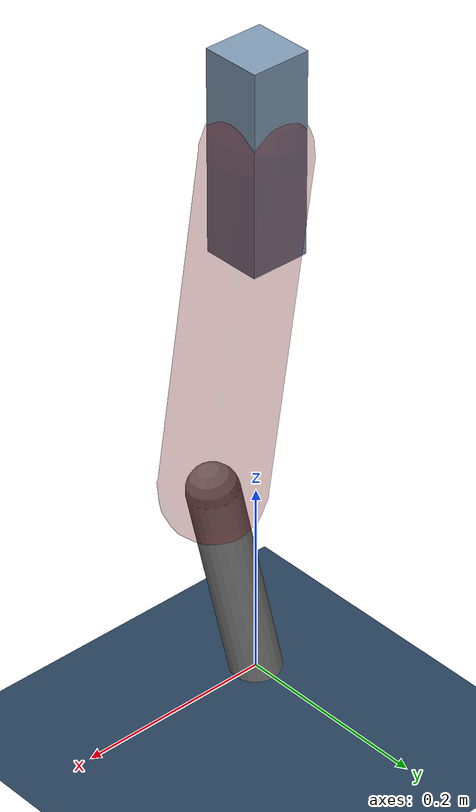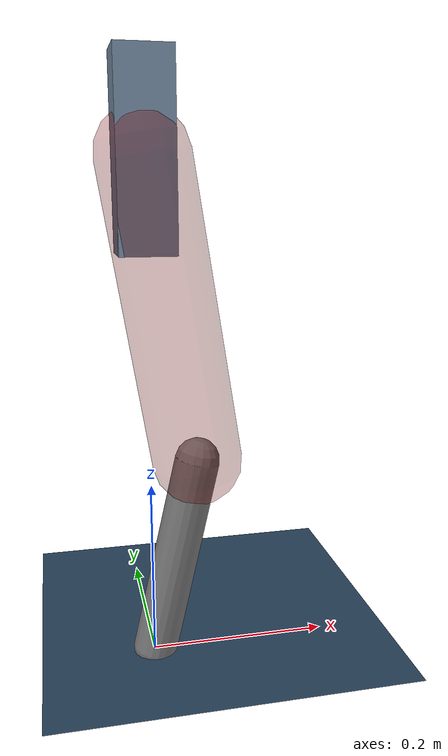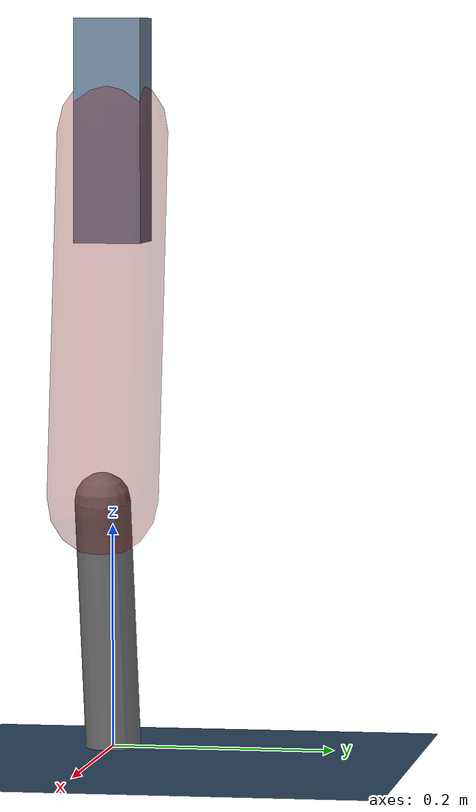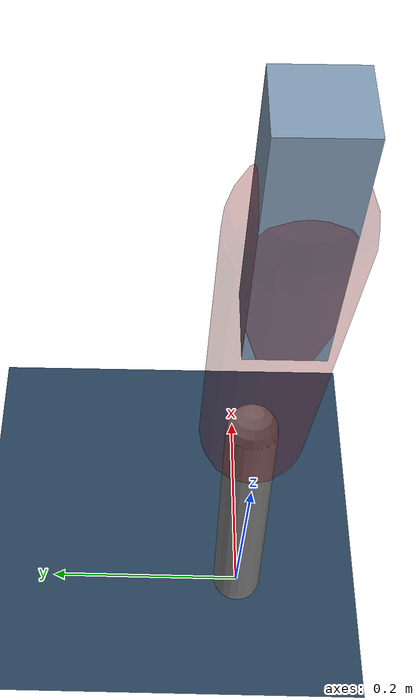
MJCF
<mujoco model="Hopper2D">
	<compiler inertiafromgeom="true" angle="radian" />
	<option timestep="0.001" integrator="implicit" cone="elliptic" solver="Newton" tolerance="1e-10" />

	<default>
		<geom contype="1" conaffinity="1" condim="3" friction="2 0.005 0.0001" solref="0.005 1" />
		<joint limited="true" damping="0.1" />
	</default>

	<asset>
		<texture name="skybox" type="skybox" builtin="gradient" rgb1=".4 .6 .8" rgb2="0 0 0" width="800" height="800" />
		<texture name="grid" type="2d" builtin="checker" rgb1=".1 .2 .3" rgb2=".2 .3 .4" width="300" height="300" mark="edge" markrgb=".2 .3 .4" />
		<material name="ground" texture="grid" texrepeat="1 1" texuniform="true" reflectance="0.1" />
		<material name="leg" rgba="0.5 0.6 0.7 1" />
	</asset>

	<worldbody>

		<geom name="floor" type="plane" size="5 5 0.25" material="ground" />

		<light directional="false" diffuse="0.8 0.8 0.8" specular="0.3 0.3 0.3" pos="0 0 2" dir="0 0 -1" />
		<light mode="targetbodycom" target="base" directional="false" diffuse="0.8 0.8 0.8" specular="0.3 0.3 0.3" pos="0 0 2" dir="0 0 -1" />

		<camera name="fixed" pos="0 -2 1" xyaxes="1 0 0 0 0 1" />
		<camera name="tracking" mode="trackcom" pos="0 -3 1" />

		<body name="root" pos="0 0 0.5540879975327863">
			<joint name="slide_x" type="slide" axis="1 0 0" range="-100 100" />
			<joint name="slide_z" type="slide" axis="0 0 1" range="0 10" />

			<body name="base" pos="0 0 0">
				<geom name="torso" type="box" size="0.03 0.03 0.1" mass="2.911" material="leg" />

				<body name="link1" pos="0 0 0" euler="0 1.4130972566624167 0">
					<joint type="hinge" axis="0 -1 0" pos="0 0 0" name="hinge1" limited="true" range="-3.14 3.14" stiffness="0" damping="0.1" />
					<geom name="thigh" type="capsule" fromto="0 0 0 0.33130081255596255 0 0" size="0.05" rgba="0.5 0 0 0.3" mass="1.074442275156695" />

					<body name="link2" pos="0.33130081255596255 0 0" euler="0 0.3831100146320348 0">
						<joint type="hinge" axis="0 -1 0" pos="0 0 0" name="hinge2" limited="true" range="-3.14 3.14" stiffness="0" damping="0.1" />
						<geom name="shank" type="capsule" fromto="0 0 0 0.2327871849768237 0 0" size="0.025" mass="0.42830846647914134" />

					</body>
				</body>
			</body>
		</body>
	</worldbody>

	<actuator>
		<motor name="torque1" joint="hinge1" ctrlrange="-112.58520949809215 112.58520949809215" ctrllimited="true" gear="1" />
		<motor name="torque2" joint="hinge2" ctrlrange="-88.66074154214812 88.66074154214812" ctrllimited="true" gear="1" />
	</actuator>
</mujoco>
